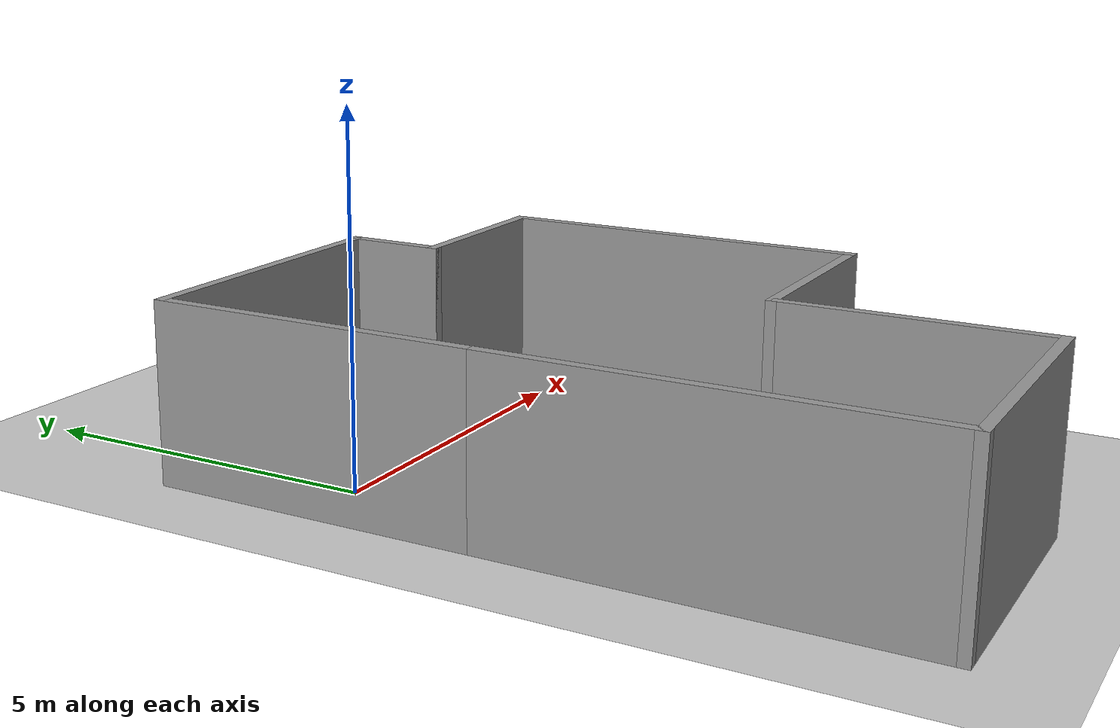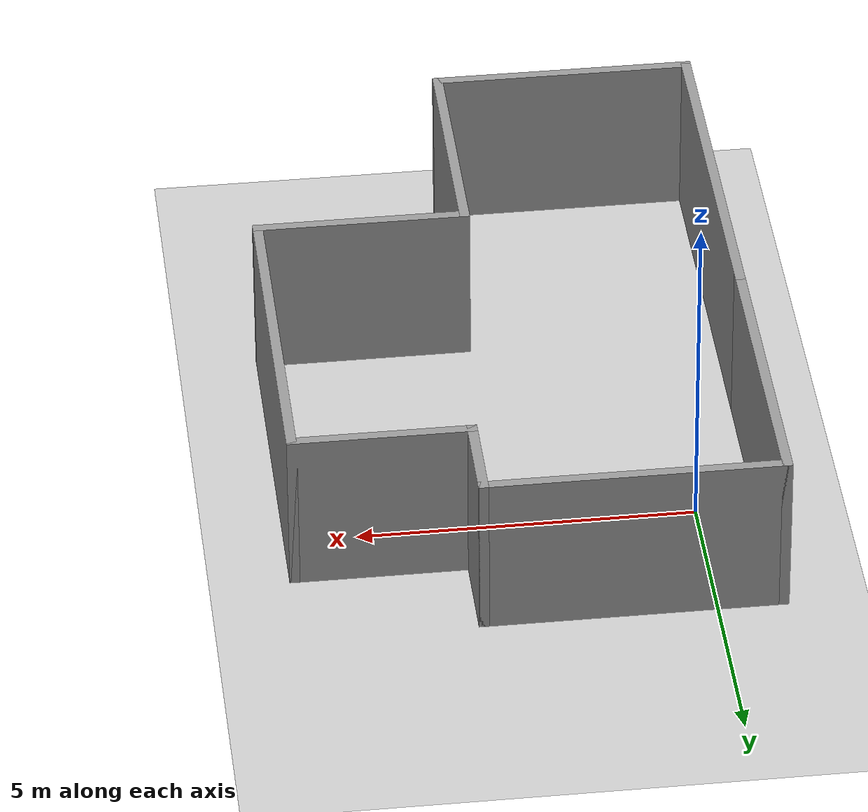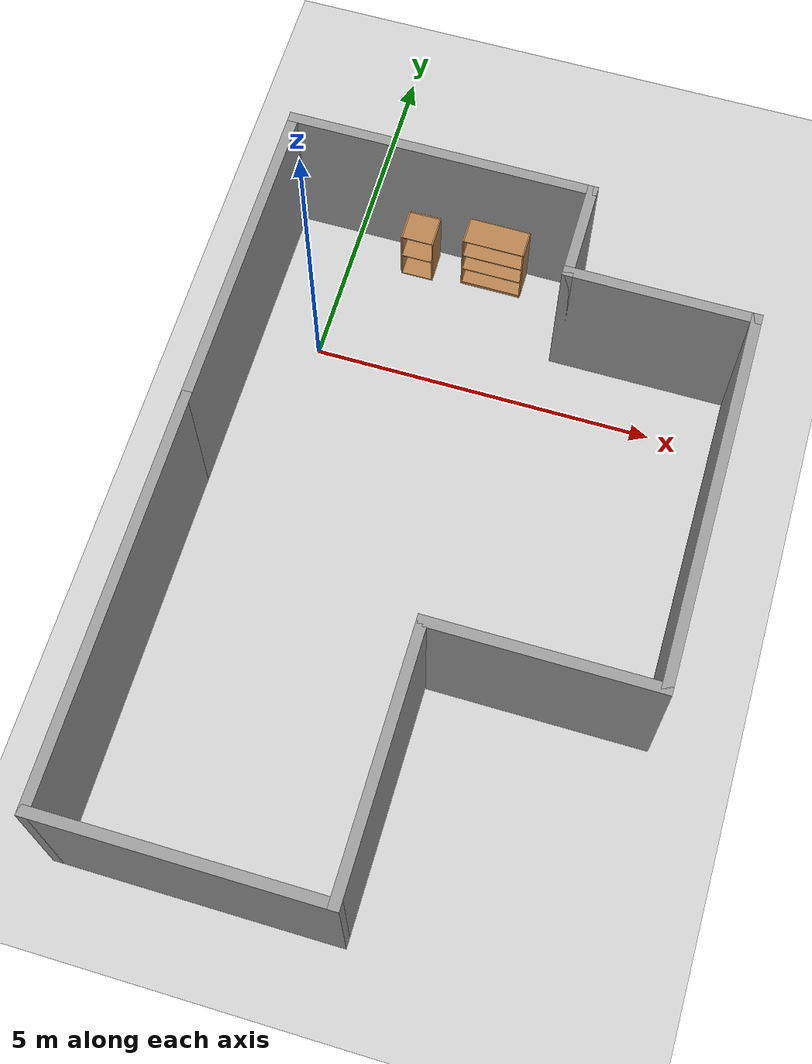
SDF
<sdf version="1.7">
 <world name="default">
  <light name="sun" type="directional">
   <pose>0 0 10 0 -0 0</pose>
   <diffuse>0.8 0.8 0.8 1</diffuse>
   <specular>0.2 0.2 0.2 1</specular>
   <attenuation>
    <range>1000</range>
    <constant>0.9</constant>
    <linear>0.01</linear>
    <quadratic>0.001</quadratic>
   </attenuation>
   <direction>-0.5 0.1 -0.9</direction>
   <spot><inner_angle>0</inner_angle><outer_angle>0</outer_angle><falloff>0</falloff></spot>
  </light>
  <model name="ground_plane">
   <static>1</static>
   <link name="link">
    <collision name="collision">
     <geometry><plane><normal>0 0 1</normal><size>100 100</size></plane></geometry>
     <surface>
      <contact><collide_bitmask>65535</collide_bitmask></contact>
      <friction><ode><mu>100</mu><mu2>50</mu2></ode></friction>
     </surface>
    </collision>
    <visual name="visual">
     <cast_shadows>0</cast_shadows>
     <geometry><plane><normal>0 0 1</normal><size>100 100</size></plane></geometry>
     <material>
      <script><uri>file://media/materials/scripts/gazebo.material</uri><name>Gazebo/Grey</name></script>
     </material>
    </visual>
   </link>
  </model>
  <gravity>0 0 -9.8</gravity>
  <magnetic_field>6e-06 2.3e-05 -4.2e-05</magnetic_field>
  <atmosphere type="adiabatic"/>
  <physics type="ode">
   <max_step_size>0.001</max_step_size>
   <real_time_factor>1</real_time_factor>
   <real_time_update_rate>1000</real_time_update_rate>
  </physics>
  <scene><ambient>0.4 0.4 0.4 1</ambient><background>0.7 0.7 0.7 1</background><shadows>1</shadows></scene>
  <audio><device>default</device></audio>
  <spherical_coordinates>
   <surface_model>EARTH_WGS84</surface_model>
   <latitude_deg>0</latitude_deg>
   <longitude_deg>0</longitude_deg>
   <elevation>0</elevation>
   <heading_deg>0</heading_deg>
  </spherical_coordinates>
  <model name="Furnished">
   <pose>2.515 -2.91 0 0 -0 0</pose>
   <link name="Wall_10">
    <collision name="Wall_10_Collision">
     <geometry><box><size>3.25 0.15 2.5</size></box></geometry>
     <pose>0 0 1.25 0 -0 0</pose>
    </collision>
    <visual name="Wall_10_Visual">
     <pose>0 0 1.25 0 -0 0</pose>
     <geometry><box><size>3.25 0.15 2.5</size></box></geometry>
     <material>
      <script><uri>file://media/materials/scripts/gazebo.material</uri><name>Gazebo/Grey</name></script>
      <ambient>1 1 1 1</ambient>
     </material>
     <meta><layer>0</layer></meta>
    </visual>
    <pose>1.925 -1.55 0 0 -0 3.14159</pose>
   </link>
   <link name="Wall_11">
    <collision name="Wall_11_Collision">
     <geometry><box><size>3.75 0.15 2.5</size></box></geometry>
     <pose>0 0 1.25 0 -0 0</pose>
    </collision>
    <visual name="Wall_11_Visual">
     <pose>0 0 1.25 0 -0 0</pose>
     <geometry><box><size>3.75 0.15 2.5</size></box></geometry>
     <material>
      <script><uri>file://media/materials/scripts/gazebo.material</uri><name>Gazebo/Grey</name></script>
      <ambient>1 1 1 1</ambient>
     </material>
     <meta><layer>0</layer></meta>
    </visual>
    <pose>0.375 -3.35 0 0 -0 -1.5708</pose>
   </link>
   <link name="Wall_12">
    <collision name="Wall_12_Collision">
     <geometry><box><size>4 0.15 2.5</size></box></geometry>
     <pose>0 0 1.25 0 -0 0</pose>
    </collision>
    <visual name="Wall_12_Visual">
     <pose>0 0 1.25 0 -0 0</pose>
     <geometry><box><size>4 0.15 2.5</size></box></geometry>
     <material>
      <script><uri>file://media/materials/scripts/gazebo.material</uri><name>Gazebo/Grey</name></script>
      <ambient>1 1 1 1</ambient>
     </material>
     <meta><layer>0</layer></meta>
    </visual>
    <pose>-1.55 -5.15 0 0 -0 3.14159</pose>
   </link>
   <link name="Wall_13">
    <collision name="Wall_13_Collision">
     <geometry><box><size>5.85 0.15 2.5</size></box></geometry>
     <pose>0 0 1.25 0 -0 0</pose>
    </collision>
    <visual name="Wall_13_Visual">
     <pose>0 0 1.25 0 -0 0</pose>
     <geometry><box><size>5.85 0.15 2.5</size></box></geometry>
     <material>
      <script><uri>file://media/materials/scripts/gazebo.material</uri><name>Gazebo/Grey</name></script>
      <ambient>1 1 1 1</ambient>
     </material>
     <meta><layer>0</layer></meta>
    </visual>
    <pose>-3.475 -2.3 0 0 -0 1.5708</pose>
   </link>
   <link name="Wall_5">
    <collision name="Wall_5_Collision">
     <geometry><box><size>4.75 0.15 2.5</size></box></geometry>
     <pose>0 0 1.25 0 -0 0</pose>
    </collision>
    <visual name="Wall_5_Visual">
     <pose>0 0 1.25 0 -0 0</pose>
     <geometry><box><size>4.75 0.15 2.5</size></box></geometry>
     <material>
      <script><uri>file://media/materials/scripts/gazebo.material</uri><name>Gazebo/Grey</name></script>
      <ambient>1 1 1 1</ambient>
     </material>
     <meta><layer>0</layer></meta>
    </visual>
    <pose>-3.475 2.85 0 0 -0 1.5708</pose>
   </link>
   <link name="Wall_6">
    <collision name="Wall_6_Collision">
     <geometry><box><size>4.5 0.15 2.5</size></box></geometry>
     <pose>0 0 1.25 0 -0 0</pose>
    </collision>
    <visual name="Wall_6_Visual">
     <pose>0 0 1.25 0 -0 0</pose>
     <geometry><box><size>4.5 0.15 2.5</size></box></geometry>
     <material>
      <script><uri>file://media/materials/scripts/gazebo.material</uri><name>Gazebo/Grey</name></script>
      <ambient>1 1 1 1</ambient>
     </material>
     <meta><layer>0</layer></meta>
    </visual>
    <pose>-1.3 5.15 0 0 -0 0</pose>
   </link>
   <link name="Wall_7">
    <collision name="Wall_7_Collision">
     <geometry><box><size>1.5 0.15 2.5</size></box></geometry>
     <pose>0 0 1.25 0 -0 0</pose>
    </collision>
    <visual name="Wall_7_Visual">
     <pose>0 0 1.25 0 -0 0</pose>
     <geometry><box><size>1.5 0.15 2.5</size></box></geometry>
     <material>
      <script><uri>file://media/materials/scripts/gazebo.material</uri><name>Gazebo/Grey</name></script>
      <ambient>1 1 1 1</ambient>
     </material>
     <meta><layer>0</layer></meta>
    </visual>
    <pose>0.875 4.475 0 0 -0 -1.5708</pose>
   </link>
   <link name="Wall_8">
    <collision name="Wall_8_Collision">
     <geometry><box><size>2.75 0.15 2.5</size></box></geometry>
     <pose>0 0 1.25 0 -0 0</pose>
    </collision>
    <visual name="Wall_8_Visual">
     <pose>0 0 1.25 0 -0 0</pose>
     <geometry><box><size>2.75 0.15 2.5</size></box></geometry>
     <material>
      <script><uri>file://media/materials/scripts/gazebo.material</uri><name>Gazebo/Grey</name></script>
      <ambient>1 1 1 1</ambient>
     </material>
     <meta><layer>0</layer></meta>
    </visual>
    <pose>2.175 3.8 0 0 -0 0</pose>
   </link>
   <link name="Wall_9">
    <collision name="Wall_9_Collision">
     <geometry><box><size>5.5 0.15 2.5</size></box></geometry>
     <pose>0 0 1.25 0 -0 0</pose>
    </collision>
    <visual name="Wall_9_Visual">
     <pose>0 0 1.25 0 -0 0</pose>
     <geometry><box><size>5.5 0.15 2.5</size></box></geometry>
     <material>
      <script><uri>file://media/materials/scripts/gazebo.material</uri><name>Gazebo/Grey</name></script>
      <ambient>1 1 1 1</ambient>
     </material>
     <meta><layer>0</layer></meta>
    </visual>
    <pose>3.475 1.125 0 0 -0 -1.5708</pose>
   </link>
   <static>1</static>
  </model>
  <model name="cabinet">
   <static>1</static>
   <link name="cabinet_bottom_plate">
    <inertial>
     <pose>0 0 -1 0 -0 0</pose>
     <inertia><ixx>2.05</ixx><ixy>0</ixy><ixz>0</ixz><iyy>2.05</iyy><iyz>0</iyz><izz>2.05</izz></inertia>
     <mass>25</mass>
    </inertial>
    <collision name="cabinet_bottom_plate_geom">
     <pose>0 0 0.01 0 -0 0</pose>
     <geometry><box><size>0.45 0.45 0.02</size></box></geometry>
    </collision>
    <visual name="cabinet_bottom_plate_geom_visual">
     <pose>0 0 0.01 0 -0 0</pose>
     <geometry><box><size>0.45 0.45 0.02</size></box></geometry>
     <material>
      <script><uri>file://media/materials/scripts/gazebo.material</uri><name>Gazebo/Wood</name></script>
     </material>
    </visual>
    <collision name="cabinet_bottom_plate_geom_cabinet_back_plate">
     <pose>0.235 0 0.51 0 -0 0</pose>
     <geometry><box><size>0.02 0.45 1.02</size></box></geometry>
    </collision>
    <visual name="cabinet_bottom_plate_geom_cabinet_back_plate_visual">
     <pose>0.235 0 0.51 0 -0 0</pose>
     <geometry><box><size>0.02 0.45 1.02</size></box></geometry>
     <material>
      <script><uri>file://media/materials/scripts/gazebo.material</uri><name>Gazebo/Wood</name></script>
     </material>
    </visual>
    <collision name="cabinet_bottom_plate_geom_cabinet_left_plate">
     <pose>0 0.235 0.51 0 -0 0</pose>
     <geometry><box><size>0.45 0.02 1.02</size></box></geometry>
    </collision>
    <visual name="cabinet_bottom_plate_geom_cabinet_left_plate_visual">
     <pose>0 0.235 0.51 0 -0 0</pose>
     <geometry><box><size>0.45 0.02 1.02</size></box></geometry>
     <material>
      <script><uri>file://media/materials/scripts/gazebo.material</uri><name>Gazebo/Wood</name></script>
     </material>
    </visual>
    <collision name="cabinet_bottom_plate_geom_cabinet_middle_plate">
     <pose>0 0 0.51 0 -0 0</pose>
     <geometry><box><size>0.45 0.45 0.02</size></box></geometry>
    </collision>
    <visual name="cabinet_bottom_plate_geom_cabinet_middle_plate_visual">
     <pose>0 0 0.51 0 -0 0</pose>
     <geometry><box><size>0.45 0.45 0.02</size></box></geometry>
     <material>
      <script><uri>file://media/materials/scripts/gazebo.material</uri><name>Gazebo/Wood</name></script>
     </material>
    </visual>
    <collision name="cabinet_bottom_plate_geom_cabinet_right_plate">
     <pose>0 -0.235 0.51 0 -0 0</pose>
     <geometry><box><size>0.45 0.02 1.02</size></box></geometry>
    </collision>
    <visual name="cabinet_bottom_plate_geom_cabinet_right_plate_visual">
     <pose>0 -0.235 0.51 0 -0 0</pose>
     <geometry><box><size>0.45 0.02 1.02</size></box></geometry>
     <material>
      <script><uri>file://media/materials/scripts/gazebo.material</uri><name>Gazebo/Wood</name></script>
     </material>
    </visual>
    <collision name="cabinet_bottom_plate_geom_cabinet_top_plate">
     <pose>0 0 1.01 0 -0 0</pose>
     <geometry><box><size>0.45 0.45 0.02</size></box></geometry>
    </collision>
    <visual name="cabinet_bottom_plate_geom_cabinet_top_plate_visual">
     <pose>0 0 1.01 0 -0 0</pose>
     <geometry><box><size>0.45 0.45 0.02</size></box></geometry>
     <material>
      <script><uri>file://media/materials/scripts/gazebo.material</uri><name>Gazebo/Wood</name></script>
     </material>
    </visual>
   </link>
   <pose>1.02986 1.87174 0 0 -0 1.57896</pose>
  </model>
  <model name="bookshelf">
   <static>1</static>
   <link name="link">
    <inertial><mass>1</mass></inertial>
    <collision name="back">
     <pose>0 0.005 0.6 0 -0 0</pose>
     <geometry><box><size>0.9 0.01 1.2</size></box></geometry>
    </collision>
    <visual name="visual1">
     <pose>0 0.005 0.6 0 -0 0</pose>
     <geometry><box><size>0.9 0.01 1.2</size></box></geometry>
     <material>
      <script><uri>file://media/materials/scripts/gazebo.material</uri><name>Gazebo/Wood</name></script>
     </material>
    </visual>
    <collision name="left_side">
     <pose>0.45 -0.195 0.6 0 -0 0</pose>
     <geometry><box><size>0.02 0.4 1.2</size></box></geometry>
    </collision>
    <visual name="visual2">
     <pose>0.45 -0.195 0.6 0 -0 0</pose>
     <geometry><box><size>0.02 0.4 1.2</size></box></geometry>
     <material>
      <script><uri>file://media/materials/scripts/gazebo.material</uri><name>Gazebo/Wood</name></script>
     </material>
    </visual>
    <collision name="right_side">
     <pose>-0.45 -0.195 0.6 0 -0 0</pose>
     <geometry><box><size>0.02 0.4 1.2</size></box></geometry>
    </collision>
    <visual name="visual3">
     <pose>-0.45 -0.195 0.6 0 -0 0</pose>
     <geometry><box><size>0.02 0.4 1.2</size></box></geometry>
     <material>
      <script><uri>file://media/materials/scripts/gazebo.material</uri><name>Gazebo/Wood</name></script>
     </material>
    </visual>
    <collision name="bottom">
     <pose>0 -0.195 0.03 0 -0 0</pose>
     <geometry><box><size>0.88 0.4 0.06</size></box></geometry>
    </collision>
    <visual name="visual4">
     <pose>0 -0.195 0.03 0 -0 0</pose>
     <geometry><box><size>0.88 0.4 0.06</size></box></geometry>
     <material>
      <script><uri>file://media/materials/scripts/gazebo.material</uri><name>Gazebo/Wood</name></script>
     </material>
    </visual>
    <collision name="top">
     <pose>0 -0.195 1.19 0 -0 0</pose>
     <geometry><box><size>0.88 0.4 0.02</size></box></geometry>
    </collision>
    <visual name="visual5">
     <pose>0 -0.195 1.19 0 -0 0</pose>
     <geometry><box><size>0.88 0.4 0.02</size></box></geometry>
     <material>
      <script><uri>file://media/materials/scripts/gazebo.material</uri><name>Gazebo/Wood</name></script>
     </material>
    </visual>
    <collision name="low_shelf">
     <pose>0 -0.195 0.43 0 -0 0</pose>
     <geometry><box><size>0.88 0.4 0.02</size></box></geometry>
    </collision>
    <visual name="visual6">
     <pose>0 -0.195 0.43 0 -0 0</pose>
     <geometry><box><size>0.88 0.4 0.02</size></box></geometry>
     <material>
      <script><uri>file://media/materials/scripts/gazebo.material</uri><name>Gazebo/Wood</name></script>
     </material>
    </visual>
    <collision name="high_shelf">
     <pose>0 -0.195 0.8 0 -0 0</pose>
     <geometry><box><size>0.88 0.4 0.02</size></box></geometry>
    </collision>
    <visual name="visual7">
     <pose>0 -0.195 0.8 0 -0 0</pose>
     <geometry><box><size>0.88 0.4 0.02</size></box></geometry>
     <material>
      <script><uri>file://media/materials/scripts/gazebo.material</uri><name>Gazebo/Wood</name></script>
     </material>
    </visual>
   </link>
   <pose>2.15833 2.12112 0 0 -0 0</pose>
  </model>
 </world>
</sdf>
